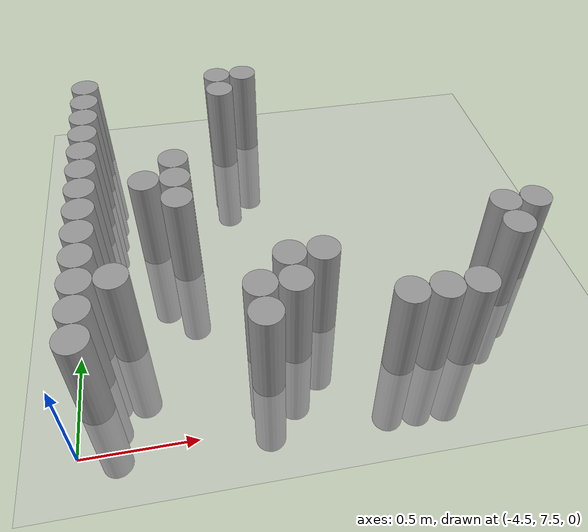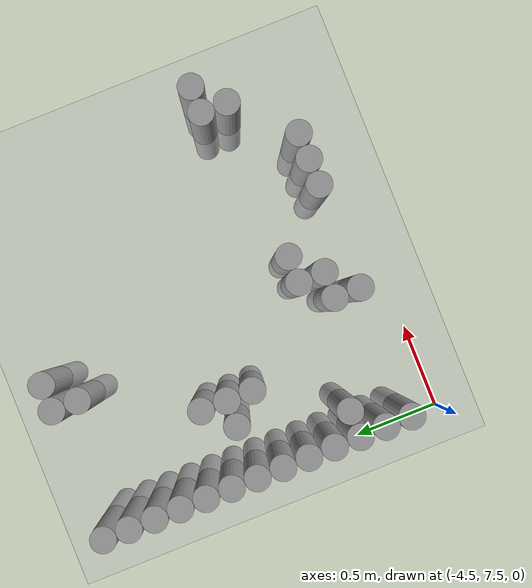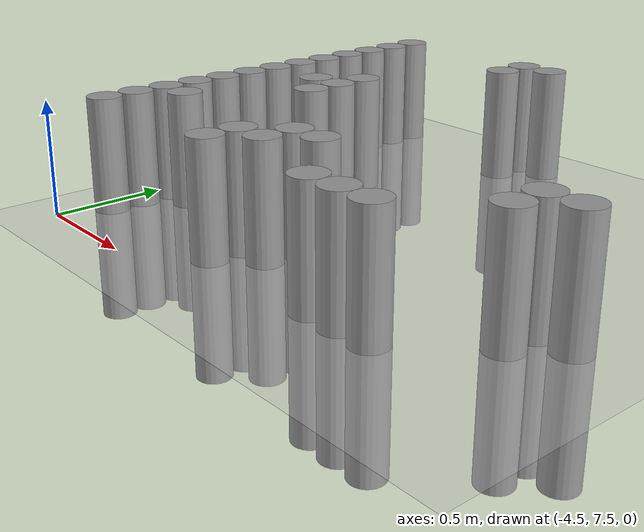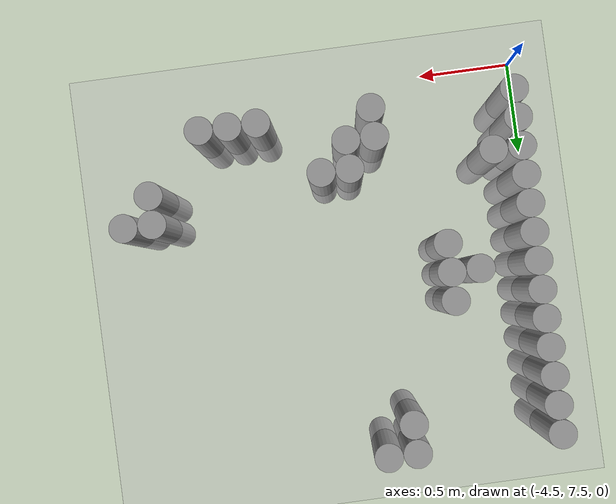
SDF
<sdf version="1.6">
 <world name="default">
  <model name="ground_plane">
   <static>1</static>
   <static>1</static>
   <link name="link">
    <collision name="collision">
     <geometry><plane><normal>0 0 1</normal><size>100 100</size></plane></geometry>
     <surface><friction><ode><mu>100</mu><mu2>50</mu2></ode></friction></surface>
    </collision>
    <visual name="visual">
     <cast_shadows>0</cast_shadows>
     <geometry><plane><normal>0 0 1</normal><size>100 100</size></plane></geometry>
     <material>
      <script><uri>file://media/materials/scripts/gazebo.material</uri><name>Gazebo/Grey</name></script>
     </material>
    </visual>
   </link>
  </model>
  <model name="unit_cylinder_113">
   <static>1</static>
   <pose>-4.425000 7.725000 0.000000 0.000000 0.000000 0.000000</pose>
   <link name="link">
    <inertial>
     <mass>1</mass>
     <inertia><ixx>0.145833</ixx><ixy>0</ixy><ixz>0</ixz><iyy>0.145833</iyy><iyz>0</iyz><izz>0.125</izz></inertia>
    </inertial>
    <collision name="collision">
     <geometry><cylinder><radius>0.075000</radius><length>1</length></cylinder></geometry>
    </collision>
    <visual name="visual">
     <geometry><cylinder><radius>0.075000</radius><length>1</length></cylinder></geometry>
     <material>
      <script><name>Gazebo/Grey</name><uri>file://media/materials/scripts/gazebo.material</uri></script>
     </material>
    </visual>
   </link>
  </model>
  <model name="unit_cylinder_114">
   <static>1</static>
   <pose>-4.425000 7.875000 0.000000 0.000000 0.000000 0.000000</pose>
   <link name="link">
    <inertial>
     <mass>1</mass>
     <inertia><ixx>0.145833</ixx><ixy>0</ixy><ixz>0</ixz><iyy>0.145833</iyy><iyz>0</iyz><izz>0.125</izz></inertia>
    </inertial>
    <collision name="collision">
     <geometry><cylinder><radius>0.075000</radius><length>1</length></cylinder></geometry>
    </collision>
    <visual name="visual">
     <geometry><cylinder><radius>0.075000</radius><length>1</length></cylinder></geometry>
     <material>
      <script><name>Gazebo/Grey</name><uri>file://media/materials/scripts/gazebo.material</uri></script>
     </material>
    </visual>
   </link>
  </model>
  <model name="unit_cylinder_115">
   <static>1</static>
   <pose>-4.425000 8.025000 0.000000 0.000000 0.000000 0.000000</pose>
   <link name="link">
    <inertial>
     <mass>1</mass>
     <inertia><ixx>0.145833</ixx><ixy>0</ixy><ixz>0</ixz><iyy>0.145833</iyy><iyz>0</iyz><izz>0.125</izz></inertia>
    </inertial>
    <collision name="collision">
     <geometry><cylinder><radius>0.075000</radius><length>1</length></cylinder></geometry>
    </collision>
    <visual name="visual">
     <geometry><cylinder><radius>0.075000</radius><length>1</length></cylinder></geometry>
     <material>
      <script><name>Gazebo/Grey</name><uri>file://media/materials/scripts/gazebo.material</uri></script>
     </material>
    </visual>
   </link>
  </model>
  <model name="unit_cylinder_116">
   <static>1</static>
   <pose>-4.425000 8.175000 0.000000 0.000000 0.000000 0.000000</pose>
   <link name="link">
    <inertial>
     <mass>1</mass>
     <inertia><ixx>0.145833</ixx><ixy>0</ixy><ixz>0</ixz><iyy>0.145833</iyy><iyz>0</iyz><izz>0.125</izz></inertia>
    </inertial>
    <collision name="collision">
     <geometry><cylinder><radius>0.075000</radius><length>1</length></cylinder></geometry>
    </collision>
    <visual name="visual">
     <geometry><cylinder><radius>0.075000</radius><length>1</length></cylinder></geometry>
     <material>
      <script><name>Gazebo/Grey</name><uri>file://media/materials/scripts/gazebo.material</uri></script>
     </material>
    </visual>
   </link>
  </model>
  <model name="unit_cylinder_117">
   <static>1</static>
   <pose>-4.425000 8.325000 0.000000 0.000000 0.000000 0.000000</pose>
   <link name="link">
    <inertial>
     <mass>1</mass>
     <inertia><ixx>0.145833</ixx><ixy>0</ixy><ixz>0</ixz><iyy>0.145833</iyy><iyz>0</iyz><izz>0.125</izz></inertia>
    </inertial>
    <collision name="collision">
     <geometry><cylinder><radius>0.075000</radius><length>1</length></cylinder></geometry>
    </collision>
    <visual name="visual">
     <geometry><cylinder><radius>0.075000</radius><length>1</length></cylinder></geometry>
     <material>
      <script><name>Gazebo/Grey</name><uri>file://media/materials/scripts/gazebo.material</uri></script>
     </material>
    </visual>
   </link>
  </model>
  <model name="unit_cylinder_118">
   <static>1</static>
   <pose>-4.425000 8.475000 0.000000 0.000000 0.000000 0.000000</pose>
   <link name="link">
    <inertial>
     <mass>1</mass>
     <inertia><ixx>0.145833</ixx><ixy>0</ixy><ixz>0</ixz><iyy>0.145833</iyy><iyz>0</iyz><izz>0.125</izz></inertia>
    </inertial>
    <collision name="collision">
     <geometry><cylinder><radius>0.075000</radius><length>1</length></cylinder></geometry>
    </collision>
    <visual name="visual">
     <geometry><cylinder><radius>0.075000</radius><length>1</length></cylinder></geometry>
     <material>
      <script><name>Gazebo/Grey</name><uri>file://media/materials/scripts/gazebo.material</uri></script>
     </material>
    </visual>
   </link>
  </model>
  <model name="unit_cylinder_119">
   <static>1</static>
   <pose>-4.425000 8.625000 0.000000 0.000000 0.000000 0.000000</pose>
   <link name="link">
    <inertial>
     <mass>1</mass>
     <inertia><ixx>0.145833</ixx><ixy>0</ixy><ixz>0</ixz><iyy>0.145833</iyy><iyz>0</iyz><izz>0.125</izz></inertia>
    </inertial>
    <collision name="collision">
     <geometry><cylinder><radius>0.075000</radius><length>1</length></cylinder></geometry>
    </collision>
    <visual name="visual">
     <geometry><cylinder><radius>0.075000</radius><length>1</length></cylinder></geometry>
     <material>
      <script><name>Gazebo/Grey</name><uri>file://media/materials/scripts/gazebo.material</uri></script>
     </material>
    </visual>
   </link>
  </model>
  <model name="unit_cylinder_120">
   <static>1</static>
   <pose>-4.425000 8.775000 0.000000 0.000000 0.000000 0.000000</pose>
   <link name="link">
    <inertial>
     <mass>1</mass>
     <inertia><ixx>0.145833</ixx><ixy>0</ixy><ixz>0</ixz><iyy>0.145833</iyy><iyz>0</iyz><izz>0.125</izz></inertia>
    </inertial>
    <collision name="collision">
     <geometry><cylinder><radius>0.075000</radius><length>1</length></cylinder></geometry>
    </collision>
    <visual name="visual">
     <geometry><cylinder><radius>0.075000</radius><length>1</length></cylinder></geometry>
     <material>
      <script><name>Gazebo/Grey</name><uri>file://media/materials/scripts/gazebo.material</uri></script>
     </material>
    </visual>
   </link>
  </model>
  <model name="unit_cylinder_121">
   <static>1</static>
   <pose>-4.425000 8.925000 0.000000 0.000000 0.000000 0.000000</pose>
   <link name="link">
    <inertial>
     <mass>1</mass>
     <inertia><ixx>0.145833</ixx><ixy>0</ixy><ixz>0</ixz><iyy>0.145833</iyy><iyz>0</iyz><izz>0.125</izz></inertia>
    </inertial>
    <collision name="collision">
     <geometry><cylinder><radius>0.075000</radius><length>1</length></cylinder></geometry>
    </collision>
    <visual name="visual">
     <geometry><cylinder><radius>0.075000</radius><length>1</length></cylinder></geometry>
     <material>
      <script><name>Gazebo/Grey</name><uri>file://media/materials/scripts/gazebo.material</uri></script>
     </material>
    </visual>
   </link>
  </model>
  <model name="unit_cylinder_122">
   <static>1</static>
   <pose>-4.425000 9.075000 0.000000 0.000000 0.000000 0.000000</pose>
   <link name="link">
    <inertial>
     <mass>1</mass>
     <inertia><ixx>0.145833</ixx><ixy>0</ixy><ixz>0</ixz><iyy>0.145833</iyy><iyz>0</iyz><izz>0.125</izz></inertia>
    </inertial>
    <collision name="collision">
     <geometry><cylinder><radius>0.075000</radius><length>1</length></cylinder></geometry>
    </collision>
    <visual name="visual">
     <geometry><cylinder><radius>0.075000</radius><length>1</length></cylinder></geometry>
     <material>
      <script><name>Gazebo/Grey</name><uri>file://media/materials/scripts/gazebo.material</uri></script>
     </material>
    </visual>
   </link>
  </model>
  <model name="unit_cylinder_123">
   <static>1</static>
   <pose>-4.425000 9.225000 0.000000 0.000000 0.000000 0.000000</pose>
   <link name="link">
    <inertial>
     <mass>1</mass>
     <inertia><ixx>0.145833</ixx><ixy>0</ixy><ixz>0</ixz><iyy>0.145833</iyy><iyz>0</iyz><izz>0.125</izz></inertia>
    </inertial>
    <collision name="collision">
     <geometry><cylinder><radius>0.075000</radius><length>1</length></cylinder></geometry>
    </collision>
    <visual name="visual">
     <geometry><cylinder><radius>0.075000</radius><length>1</length></cylinder></geometry>
     <material>
      <script><name>Gazebo/Grey</name><uri>file://media/materials/scripts/gazebo.material</uri></script>
     </material>
    </visual>
   </link>
  </model>
  <model name="unit_cylinder_124">
   <static>1</static>
   <pose>-4.425000 9.375000 0.000000 0.000000 0.000000 0.000000</pose>
   <link name="link">
    <inertial>
     <mass>1</mass>
     <inertia><ixx>0.145833</ixx><ixy>0</ixy><ixz>0</ixz><iyy>0.145833</iyy><iyz>0</iyz><izz>0.125</izz></inertia>
    </inertial>
    <collision name="collision">
     <geometry><cylinder><radius>0.075000</radius><length>1</length></cylinder></geometry>
    </collision>
    <visual name="visual">
     <geometry><cylinder><radius>0.075000</radius><length>1</length></cylinder></geometry>
     <material>
      <script><name>Gazebo/Grey</name><uri>file://media/materials/scripts/gazebo.material</uri></script>
     </material>
    </visual>
   </link>
  </model>
  <model name="unit_cylinder_125">
   <static>1</static>
   <pose>-4.425000 9.525000 0.000000 0.000000 0.000000 0.000000</pose>
   <link name="link">
    <inertial>
     <mass>1</mass>
     <inertia><ixx>0.145833</ixx><ixy>0</ixy><ixz>0</ixz><iyy>0.145833</iyy><iyz>0</iyz><izz>0.125</izz></inertia>
    </inertial>
    <collision name="collision">
     <geometry><cylinder><radius>0.075000</radius><length>1</length></cylinder></geometry>
    </collision>
    <visual name="visual">
     <geometry><cylinder><radius>0.075000</radius><length>1</length></cylinder></geometry>
     <material>
      <script><name>Gazebo/Grey</name><uri>file://media/materials/scripts/gazebo.material</uri></script>
     </material>
    </visual>
   </link>
  </model>
  <model name="unit_cylinder_134">
   <static>1</static>
   <pose>-4.275000 8.025000 0.000000 0.000000 0.000000 0.000000</pose>
   <link name="link">
    <inertial>
     <mass>1</mass>
     <inertia><ixx>0.145833</ixx><ixy>0</ixy><ixz>0</ixz><iyy>0.145833</iyy><iyz>0</iyz><izz>0.125</izz></inertia>
    </inertial>
    <collision name="collision">
     <geometry><cylinder><radius>0.075000</radius><length>1</length></cylinder></geometry>
    </collision>
    <visual name="visual">
     <geometry><cylinder><radius>0.075000</radius><length>1</length></cylinder></geometry>
     <material>
      <script><name>Gazebo/Grey</name><uri>file://media/materials/scripts/gazebo.material</uri></script>
     </material>
    </visual>
   </link>
  </model>
  <model name="unit_cylinder_136">
   <static>1</static>
   <pose>-4.125000 8.625000 0.000000 0.000000 0.000000 0.000000</pose>
   <link name="link">
    <inertial>
     <mass>1</mass>
     <inertia><ixx>0.145833</ixx><ixy>0</ixy><ixz>0</ixz><iyy>0.145833</iyy><iyz>0</iyz><izz>0.125</izz></inertia>
    </inertial>
    <collision name="collision">
     <geometry><cylinder><radius>0.075000</radius><length>1</length></cylinder></geometry>
    </collision>
    <visual name="visual">
     <geometry><cylinder><radius>0.075000</radius><length>1</length></cylinder></geometry>
     <material>
      <script><name>Gazebo/Grey</name><uri>file://media/materials/scripts/gazebo.material</uri></script>
     </material>
    </visual>
   </link>
  </model>
  <model name="unit_cylinder_137">
   <static>1</static>
   <pose>-3.975000 8.475000 0.000000 0.000000 0.000000 0.000000</pose>
   <link name="link">
    <inertial>
     <mass>1</mass>
     <inertia><ixx>0.145833</ixx><ixy>0</ixy><ixz>0</ixz><iyy>0.145833</iyy><iyz>0</iyz><izz>0.125</izz></inertia>
    </inertial>
    <collision name="collision">
     <geometry><cylinder><radius>0.075000</radius><length>1</length></cylinder></geometry>
    </collision>
    <visual name="visual">
     <geometry><cylinder><radius>0.075000</radius><length>1</length></cylinder></geometry>
     <material>
      <script><name>Gazebo/Grey</name><uri>file://media/materials/scripts/gazebo.material</uri></script>
     </material>
    </visual>
   </link>
  </model>
  <model name="unit_cylinder_138">
   <static>1</static>
   <pose>-3.975000 8.625000 0.000000 0.000000 0.000000 0.000000</pose>
   <link name="link">
    <inertial>
     <mass>1</mass>
     <inertia><ixx>0.145833</ixx><ixy>0</ixy><ixz>0</ixz><iyy>0.145833</iyy><iyz>0</iyz><izz>0.125</izz></inertia>
    </inertial>
    <collision name="collision">
     <geometry><cylinder><radius>0.075000</radius><length>1</length></cylinder></geometry>
    </collision>
    <visual name="visual">
     <geometry><cylinder><radius>0.075000</radius><length>1</length></cylinder></geometry>
     <material>
      <script><name>Gazebo/Grey</name><uri>file://media/materials/scripts/gazebo.material</uri></script>
     </material>
    </visual>
   </link>
  </model>
  <model name="unit_cylinder_139">
   <static>1</static>
   <pose>-3.975000 8.775000 0.000000 0.000000 0.000000 0.000000</pose>
   <link name="link">
    <inertial>
     <mass>1</mass>
     <inertia><ixx>0.145833</ixx><ixy>0</ixy><ixz>0</ixz><iyy>0.145833</iyy><iyz>0</iyz><izz>0.125</izz></inertia>
    </inertial>
    <collision name="collision">
     <geometry><cylinder><radius>0.075000</radius><length>1</length></cylinder></geometry>
    </collision>
    <visual name="visual">
     <geometry><cylinder><radius>0.075000</radius><length>1</length></cylinder></geometry>
     <material>
      <script><name>Gazebo/Grey</name><uri>file://media/materials/scripts/gazebo.material</uri></script>
     </material>
    </visual>
   </link>
  </model>
  <model name="unit_cylinder_145">
   <static>1</static>
   <pose>-3.675000 7.725000 0.000000 0.000000 0.000000 0.000000</pose>
   <link name="link">
    <inertial>
     <mass>1</mass>
     <inertia><ixx>0.145833</ixx><ixy>0</ixy><ixz>0</ixz><iyy>0.145833</iyy><iyz>0</iyz><izz>0.125</izz></inertia>
    </inertial>
    <collision name="collision">
     <geometry><cylinder><radius>0.075000</radius><length>1</length></cylinder></geometry>
    </collision>
    <visual name="visual">
     <geometry><cylinder><radius>0.075000</radius><length>1</length></cylinder></geometry>
     <material>
      <script><name>Gazebo/Grey</name><uri>file://media/materials/scripts/gazebo.material</uri></script>
     </material>
    </visual>
   </link>
  </model>
  <model name="unit_cylinder_146">
   <static>1</static>
   <pose>-3.675000 7.875000 0.000000 0.000000 0.000000 0.000000</pose>
   <link name="link">
    <inertial>
     <mass>1</mass>
     <inertia><ixx>0.145833</ixx><ixy>0</ixy><ixz>0</ixz><iyy>0.145833</iyy><iyz>0</iyz><izz>0.125</izz></inertia>
    </inertial>
    <collision name="collision">
     <geometry><cylinder><radius>0.075000</radius><length>1</length></cylinder></geometry>
    </collision>
    <visual name="visual">
     <geometry><cylinder><radius>0.075000</radius><length>1</length></cylinder></geometry>
     <material>
      <script><name>Gazebo/Grey</name><uri>file://media/materials/scripts/gazebo.material</uri></script>
     </material>
    </visual>
   </link>
  </model>
  <model name="unit_cylinder_147">
   <static>1</static>
   <pose>-3.675000 9.375000 0.000000 0.000000 0.000000 0.000000</pose>
   <link name="link">
    <inertial>
     <mass>1</mass>
     <inertia><ixx>0.145833</ixx><ixy>0</ixy><ixz>0</ixz><iyy>0.145833</iyy><iyz>0</iyz><izz>0.125</izz></inertia>
    </inertial>
    <collision name="collision">
     <geometry><cylinder><radius>0.075000</radius><length>1</length></cylinder></geometry>
    </collision>
    <visual name="visual">
     <geometry><cylinder><radius>0.075000</radius><length>1</length></cylinder></geometry>
     <material>
      <script><name>Gazebo/Grey</name><uri>file://media/materials/scripts/gazebo.material</uri></script>
     </material>
    </visual>
   </link>
  </model>
  <model name="unit_cylinder_148">
   <static>1</static>
   <pose>-3.675000 9.525000 0.000000 0.000000 0.000000 0.000000</pose>
   <link name="link">
    <inertial>
     <mass>1</mass>
     <inertia><ixx>0.145833</ixx><ixy>0</ixy><ixz>0</ixz><iyy>0.145833</iyy><iyz>0</iyz><izz>0.125</izz></inertia>
    </inertial>
    <collision name="collision">
     <geometry><cylinder><radius>0.075000</radius><length>1</length></cylinder></geometry>
    </collision>
    <visual name="visual">
     <geometry><cylinder><radius>0.075000</radius><length>1</length></cylinder></geometry>
     <material>
      <script><name>Gazebo/Grey</name><uri>file://media/materials/scripts/gazebo.material</uri></script>
     </material>
    </visual>
   </link>
  </model>
  <model name="unit_cylinder_150">
   <static>1</static>
   <pose>-3.525000 7.875000 0.000000 0.000000 0.000000 0.000000</pose>
   <link name="link">
    <inertial>
     <mass>1</mass>
     <inertia><ixx>0.145833</ixx><ixy>0</ixy><ixz>0</ixz><iyy>0.145833</iyy><iyz>0</iyz><izz>0.125</izz></inertia>
    </inertial>
    <collision name="collision">
     <geometry><cylinder><radius>0.075000</radius><length>1</length></cylinder></geometry>
    </collision>
    <visual name="visual">
     <geometry><cylinder><radius>0.075000</radius><length>1</length></cylinder></geometry>
     <material>
      <script><name>Gazebo/Grey</name><uri>file://media/materials/scripts/gazebo.material</uri></script>
     </material>
    </visual>
   </link>
  </model>
  <model name="unit_cylinder_151">
   <static>1</static>
   <pose>-3.525000 8.025000 0.000000 0.000000 0.000000 0.000000</pose>
   <link name="link">
    <inertial>
     <mass>1</mass>
     <inertia><ixx>0.145833</ixx><ixy>0</ixy><ixz>0</ixz><iyy>0.145833</iyy><iyz>0</iyz><izz>0.125</izz></inertia>
    </inertial>
    <collision name="collision">
     <geometry><cylinder><radius>0.075000</radius><length>1</length></cylinder></geometry>
    </collision>
    <visual name="visual">
     <geometry><cylinder><radius>0.075000</radius><length>1</length></cylinder></geometry>
     <material>
      <script><name>Gazebo/Grey</name><uri>file://media/materials/scripts/gazebo.material</uri></script>
     </material>
    </visual>
   </link>
  </model>
  <model name="unit_cylinder_152">
   <static>1</static>
   <pose>-3.525000 9.525000 0.000000 0.000000 0.000000 0.000000</pose>
   <link name="link">
    <inertial>
     <mass>1</mass>
     <inertia><ixx>0.145833</ixx><ixy>0</ixy><ixz>0</ixz><iyy>0.145833</iyy><iyz>0</iyz><izz>0.125</izz></inertia>
    </inertial>
    <collision name="collision">
     <geometry><cylinder><radius>0.075000</radius><length>1</length></cylinder></geometry>
    </collision>
    <visual name="visual">
     <geometry><cylinder><radius>0.075000</radius><length>1</length></cylinder></geometry>
     <material>
      <script><name>Gazebo/Grey</name><uri>file://media/materials/scripts/gazebo.material</uri></script>
     </material>
    </visual>
   </link>
  </model>
  <model name="unit_cylinder_155">
   <static>1</static>
   <pose>-3.375000 8.025000 0.000000 0.000000 0.000000 0.000000</pose>
   <link name="link">
    <inertial>
     <mass>1</mass>
     <inertia><ixx>0.145833</ixx><ixy>0</ixy><ixz>0</ixz><iyy>0.145833</iyy><iyz>0</iyz><izz>0.125</izz></inertia>
    </inertial>
    <collision name="collision">
     <geometry><cylinder><radius>0.075000</radius><length>1</length></cylinder></geometry>
    </collision>
    <visual name="visual">
     <geometry><cylinder><radius>0.075000</radius><length>1</length></cylinder></geometry>
     <material>
      <script><name>Gazebo/Grey</name><uri>file://media/materials/scripts/gazebo.material</uri></script>
     </material>
    </visual>
   </link>
  </model>
  <model name="unit_cylinder_167">
   <static>1</static>
   <pose>-3.075000 7.725000 0.000000 0.000000 0.000000 0.000000</pose>
   <link name="link">
    <inertial>
     <mass>1</mass>
     <inertia><ixx>0.145833</ixx><ixy>0</ixy><ixz>0</ixz><iyy>0.145833</iyy><iyz>0</iyz><izz>0.125</izz></inertia>
    </inertial>
    <collision name="collision">
     <geometry><cylinder><radius>0.075000</radius><length>1</length></cylinder></geometry>
    </collision>
    <visual name="visual">
     <geometry><cylinder><radius>0.075000</radius><length>1</length></cylinder></geometry>
     <material>
      <script><name>Gazebo/Grey</name><uri>file://media/materials/scripts/gazebo.material</uri></script>
     </material>
    </visual>
   </link>
  </model>
  <model name="unit_cylinder_171">
   <static>1</static>
   <pose>-2.925000 7.725000 0.000000 0.000000 0.000000 0.000000</pose>
   <link name="link">
    <inertial>
     <mass>1</mass>
     <inertia><ixx>0.145833</ixx><ixy>0</ixy><ixz>0</ixz><iyy>0.145833</iyy><iyz>0</iyz><izz>0.125</izz></inertia>
    </inertial>
    <collision name="collision">
     <geometry><cylinder><radius>0.075000</radius><length>1</length></cylinder></geometry>
    </collision>
    <visual name="visual">
     <geometry><cylinder><radius>0.075000</radius><length>1</length></cylinder></geometry>
     <material>
      <script><name>Gazebo/Grey</name><uri>file://media/materials/scripts/gazebo.material</uri></script>
     </material>
    </visual>
   </link>
  </model>
  <model name="unit_cylinder_174">
   <static>1</static>
   <pose>-2.775000 7.725000 0.000000 0.000000 0.000000 0.000000</pose>
   <link name="link">
    <inertial>
     <mass>1</mass>
     <inertia><ixx>0.145833</ixx><ixy>0</ixy><ixz>0</ixz><iyy>0.145833</iyy><iyz>0</iyz><izz>0.125</izz></inertia>
    </inertial>
    <collision name="collision">
     <geometry><cylinder><radius>0.075000</radius><length>1</length></cylinder></geometry>
    </collision>
    <visual name="visual">
     <geometry><cylinder><radius>0.075000</radius><length>1</length></cylinder></geometry>
     <material>
      <script><name>Gazebo/Grey</name><uri>file://media/materials/scripts/gazebo.material</uri></script>
     </material>
    </visual>
   </link>
  </model>
  <model name="unit_cylinder_175">
   <static>1</static>
   <pose>-2.475000 8.025000 0.000000 0.000000 0.000000 0.000000</pose>
   <link name="link">
    <inertial>
     <mass>1</mass>
     <inertia><ixx>0.145833</ixx><ixy>0</ixy><ixz>0</ixz><iyy>0.145833</iyy><iyz>0</iyz><izz>0.125</izz></inertia>
    </inertial>
    <collision name="collision">
     <geometry><cylinder><radius>0.075000</radius><length>1</length></cylinder></geometry>
    </collision>
    <visual name="visual">
     <geometry><cylinder><radius>0.075000</radius><length>1</length></cylinder></geometry>
     <material>
      <script><name>Gazebo/Grey</name><uri>file://media/materials/scripts/gazebo.material</uri></script>
     </material>
    </visual>
   </link>
  </model>
  <model name="unit_cylinder_176">
   <static>1</static>
   <pose>-2.475000 8.175000 0.000000 0.000000 0.000000 0.000000</pose>
   <link name="link">
    <inertial>
     <mass>1</mass>
     <inertia><ixx>0.145833</ixx><ixy>0</ixy><ixz>0</ixz><iyy>0.145833</iyy><iyz>0</iyz><izz>0.125</izz></inertia>
    </inertial>
    <collision name="collision">
     <geometry><cylinder><radius>0.075000</radius><length>1</length></cylinder></geometry>
    </collision>
    <visual name="visual">
     <geometry><cylinder><radius>0.075000</radius><length>1</length></cylinder></geometry>
     <material>
      <script><name>Gazebo/Grey</name><uri>file://media/materials/scripts/gazebo.material</uri></script>
     </material>
    </visual>
   </link>
  </model>
  <model name="unit_cylinder_178">
   <static>1</static>
   <pose>-2.325000 8.175000 0.000000 0.000000 0.000000 0.000000</pose>
   <link name="link">
    <inertial>
     <mass>1</mass>
     <inertia><ixx>0.145833</ixx><ixy>0</ixy><ixz>0</ixz><iyy>0.145833</iyy><iyz>0</iyz><izz>0.125</izz></inertia>
    </inertial>
    <collision name="collision">
     <geometry><cylinder><radius>0.075000</radius><length>1</length></cylinder></geometry>
    </collision>
    <visual name="visual">
     <geometry><cylinder><radius>0.075000</radius><length>1</length></cylinder></geometry>
     <material>
      <script><name>Gazebo/Grey</name><uri>file://media/materials/scripts/gazebo.material</uri></script>
     </material>
    </visual>
   </link>
  </model>
 </world>
</sdf>
